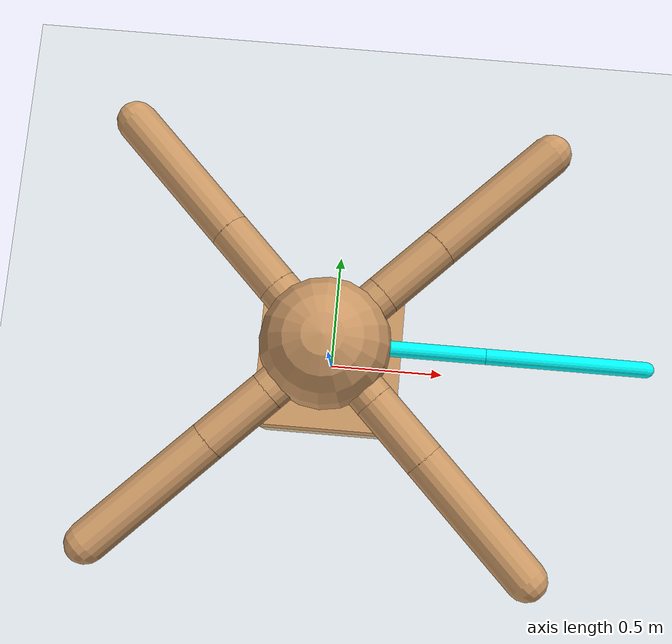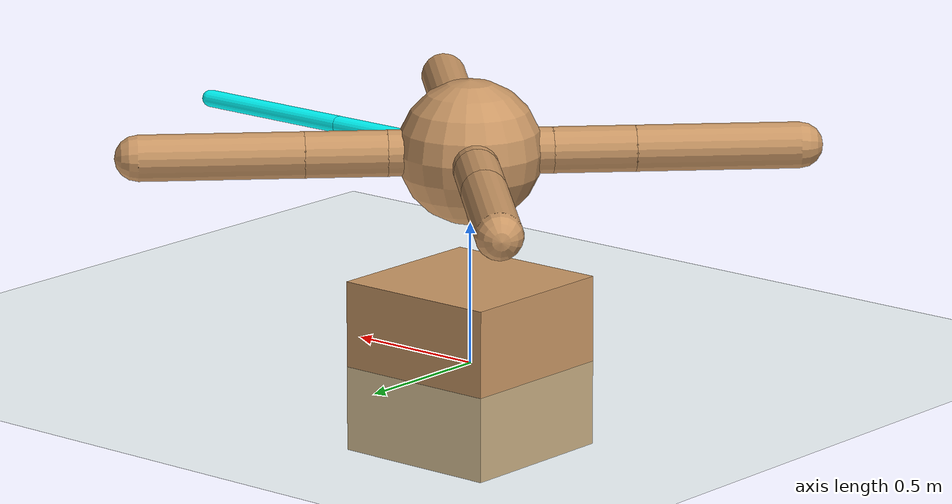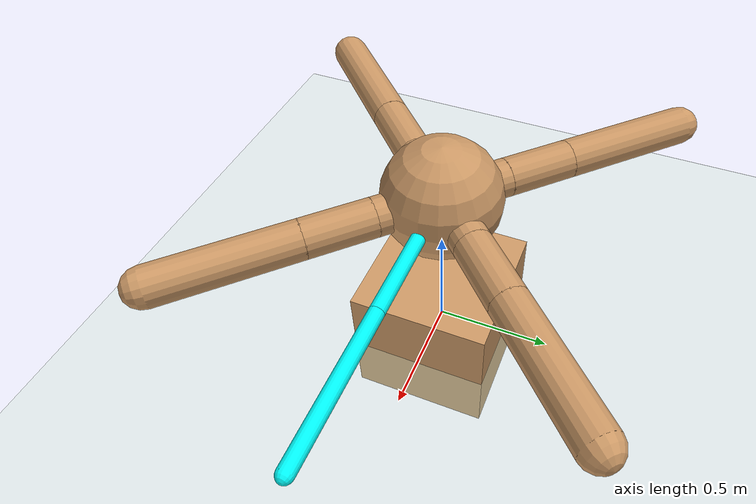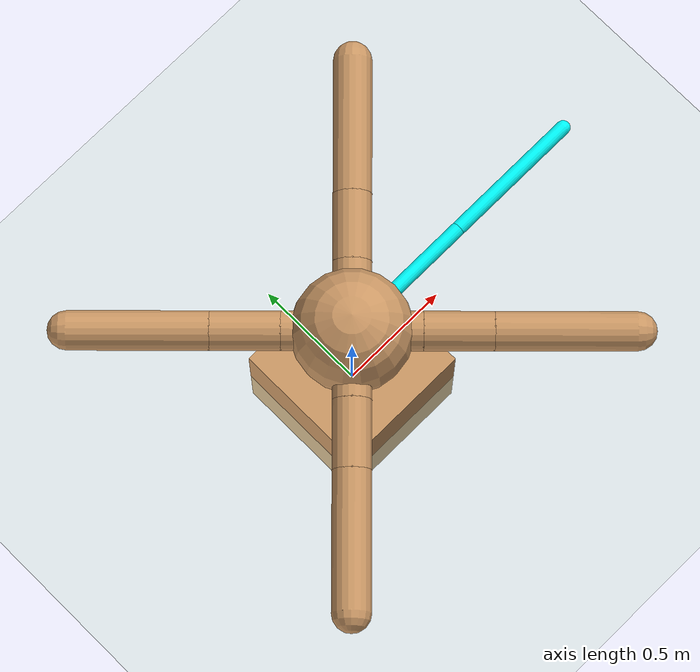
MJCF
<mujoco model="ant">
  <compiler angle="degree" coordinate="local" inertiafromgeom="true"/>
  <option integrator="RK4" timestep="0.01"/>
    <size nconmax="500"/>
  <custom>
    <numeric data="0.0 0.0 0.55 1.0 0.0 0.0 0.0 0.0 1.0 0.0 -1.0 0.0 -1.0 0.0 1.0" name="init_qpos"/>
  </custom>
  <default>
    <joint armature="1" damping="1" limited="true"/>
    <geom conaffinity="0" condim="3" density="5.0" friction="1 0.5 0.5" margin="0.01" rgba="0.8 0.6 0.4 1"/>
  </default>
  <asset>
    <texture builtin="gradient" height="100" rgb1="1 1 1" rgb2="0 0 0" type="skybox" width="100"/>
    <texture builtin="flat" height="1278" mark="cross" markrgb="1 1 1" name="texgeom" random="0.01" rgb1="0.8 0.6 0.4" rgb2="0.8 0.6 0.4" type="cube" width="127"/>
    <texture builtin="checker" height="100" name="texplane" rgb1="0 0 0" rgb2="0.8 0.8 0.8" type="2d" width="100"/>
    <material name="MatPlane" reflectance="0.2" shininess="1" specular="1" texrepeat="0 0" texture="texplane"/>
    <material name="geom" texture="texgeom" texuniform="true"/>
  </asset>

  <worldbody>
    <light cutoff="100" diffuse="1 1 1" dir="-0 0 -1.3" directional="true" exponent="1" pos="0 0 1.3" specular=".1 .1 .1"/>
    <geom conaffinity="1" condim="3" material="MatPlane" name="floor" pos="10 0 0" rgba="0.8 0.9 0.8 1" size="12 4 1" type="plane"/>

    <body name="torso" pos="0 0 0.75">
      <camera name="track" mode="trackcom" pos="0 -3 0.3" xyaxes="1 0 0 0 0 1"/>
      <geom name="torso_geom" pos="0 0 0" size="0.25" type="sphere"/>
      <joint armature="0" damping="0" limited="false" margin="0.01" name="root" pos="0 0 0" type="free"/>
      <body name="front_left_leg" pos="0 0 0">
        <geom fromto="0.0 0.0 0.0 0.2 0.2 0.0" name="aux_1_geom" size="0.08" type="capsule"/>
        <body name="aux_1" pos="0.2 0.2 0">
          <joint axis="0 0 1" name="hip_1" pos="0.0 0.0 0.0" range="-30 30" type="hinge"/>
          <geom fromto="0.0 0.0 0.0 0.2 0.2 0.0" name="left_leg_geom" size="0.08" type="capsule"/>
          <body pos="0.2 0.2 0">
            <joint axis="-1 1 0" name="ankle_1" pos="0.0 0.0 0.0" range="30 70" type="hinge"/>
            <geom fromto="0.0 0.0 0.0 0.4 0.4 0.0" name="left_ankle_geom" size="0.08" type="capsule"/>
          </body>
        </body>
      </body>
      <body name="front_right_leg" pos="0 0 0">
        <geom fromto="0.0 0.0 0.0 -0.2 0.2 0.0" name="aux_2_geom" size="0.08" type="capsule"/>
        <body name="aux_2" pos="-0.2 0.2 0">
          <joint axis="0 0 1" name="hip_2" pos="0.0 0.0 0.0" range="-30 30" type="hinge"/>
          <geom fromto="0.0 0.0 0.0 -0.2 0.2 0.0" name="right_leg_geom" size="0.08" type="capsule"/>
          <body pos="-0.2 0.2 0">
            <joint axis="1 1 0" name="ankle_2" pos="0.0 0.0 0.0" range="-70 -30" type="hinge"/>
            <geom fromto="0.0 0.0 0.0 -0.4 0.4 0.0" name="right_ankle_geom" size="0.08" type="capsule"/>
          </body>
        </body>
      </body>
      <body name="back_leg" pos="0 0 0">
        <geom fromto="0.0 0.0 0.0 -0.2 -0.2 0.0" name="aux_3_geom" size="0.08" type="capsule"/>
        <body name="aux_3" pos="-0.2 -0.2 0">
          <joint axis="0 0 1" name="hip_3" pos="0.0 0.0 0.0" range="-30 30" type="hinge"/>
          <geom fromto="0.0 0.0 0.0 -0.2 -0.2 0.0" name="back_leg_geom" size="0.08" type="capsule"/>
          <body pos="-0.2 -0.2 0">
            <joint axis="-1 1 0" name="ankle_3" pos="0.0 0.0 0.0" range="-70 -30" type="hinge"/>
            <geom fromto="0.0 0.0 0.0 -0.4 -0.4 0.0" name="third_ankle_geom" size="0.08" type="capsule"/>
          </body>
        </body>
      </body>
      <body name="right_back_leg" pos="0 0 0">
        <geom fromto="0.0 0.0 0.0 0.2 -0.2 0.0" name="aux_4_geom" size="0.08" type="capsule"/>
        <body name="aux_4" pos="0.2 -0.2 0">
          <joint axis="0 0 1" name="hip_4" pos="0.0 0.0 0.0" range="-30 30" type="hinge"/>
          <geom fromto="0.0 0.0 0.0 0.2 -0.2 0.0" name="rightback_leg_geom" size="0.08" type="capsule"/>
          <body pos="0.2 -0.2 0">
            <joint axis="1 1 0" name="ankle_4" pos="0.0 0.0 0.0" range="30 70" type="hinge"/>
            <geom fromto="0.0 0.0 0.0 0.4 -0.4 0.0" name="fourth_ankle_geom" size="0.08" type="capsule"/>
          </body>
        </body>
      </body>

      <body name="left_feeler" pos="0 0 0">
        <joint axis="0 0 1" name="lf1" pos="0.0 0.0 0.0" range="5 20" type="hinge"/>
        <geom fromto="0.2 0.0 0.0 0.6 0.0 0.0" name="lf1_geom" size="0.03" density="1" type="capsule" rgba="0 1 1 1"/>
        <body pos="0.6 0.0 0">
          <joint axis="0 1 0" name="lf2" pos="0.0 0.0 0.0" range="-40 20" type="hinge"/>
          <geom fromto="0.0 0.0 0.0 0.6 0.0 0.0" name="lf2_geom" size="0.03" density="1" type="capsule" rgba="0 1 1 1"/>
        </body>
      </body>

      <body name="right_feeler" pos="0 0 0">
        <joint axis="0 0 1" name="rf1" pos="0.0 0.0 0.0" range="-20 -5" type="hinge"/>
        <geom fromto="0.2 0.0 0.0 0.6 0.0 0.0" name="rf1_geom" size="0.03" density="1" type="capsule" rgba="0 1 1 1"/>
        <body pos="0.6 0.0 0">
          <joint axis="0 1 0" name="rf2" pos="0.0 0.0 0.0" range="-40 20" type="hinge"/>
          <geom fromto="0.0 0.0 0.0 0.6 0.0 0.0" name="rf2_geom" size="0.03" density="1" type="capsule" rgba="0 1 1 1"/>
        </body>
      </body>

    </body>

    <body>
        <freejoint name="cube_0"/>
        <geom conaffinity="1" condim="3" name="cube0_geom" pos="0 0 0" size="0.3 0.3 0.3" mass="70" type="box"/>
    </body>

    <body>
        <freejoint name="cube_1"/>
        <geom conaffinity="1" condim="3" name="cube1_geom" pos="0 0 0" size="0.3 0.3 0.3" mass="70" type="box"/>
    </body>

    <body>
        <freejoint name="cube_2"/>
        <geom conaffinity="1" condim="3" name="cube2_geom" pos="0 0 0" size="0.3 0.3 0.3" mass="70" type="box"/>
    </body>

    <body>
        <freejoint name="cube_3"/>
        <geom conaffinity="1" condim="3" name="cube3_geom" pos="0 0 0" size="0.3 0.3 0.3" mass="70" type="box"/>
    </body>

    <body>
        <freejoint name="cube_4"/>
        <geom conaffinity="1" condim="3" name="cube4_geom" pos="0 0 0" size="0.3 0.3 0.3" mass="70" type="box"/>
    </body>

  </worldbody>

  <actuator>
    <motor ctrllimited="true" ctrlrange="-1.0 1.0" joint="hip_4" gear="20"/>
    <motor ctrllimited="true" ctrlrange="-1.0 1.0" joint="ankle_4" gear="20"/>
    <motor ctrllimited="true" ctrlrange="-1.0 1.0" joint="hip_1" gear="20"/>
    <motor ctrllimited="true" ctrlrange="-1.0 1.0" joint="ankle_1" gear="20"/>
    <motor ctrllimited="true" ctrlrange="-1.0 1.0" joint="hip_2" gear="60"/>
    <motor ctrllimited="true" ctrlrange="-1.0 1.0" joint="ankle_2" gear="60"/>
    <motor ctrllimited="true" ctrlrange="-1.0 1.0" joint="hip_3" gear="60"/>
    <motor ctrllimited="true" ctrlrange="-1.0 1.0" joint="ankle_3" gear="60"/>
    <motor ctrllimited="true" ctrlrange="-1.0 1.0" joint="lf1" gear="30"/>
    <motor ctrllimited="true" ctrlrange="-1.0 1.0" joint="lf2" gear="30"/>
    <motor ctrllimited="true" ctrlrange="-1.0 1.0" joint="rf1" gear="30"/>
    <motor ctrllimited="true" ctrlrange="-1.0 1.0" joint="rf2" gear="30"/>
  </actuator>
</mujoco>
